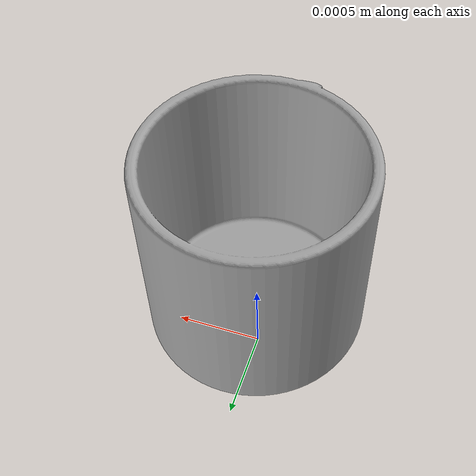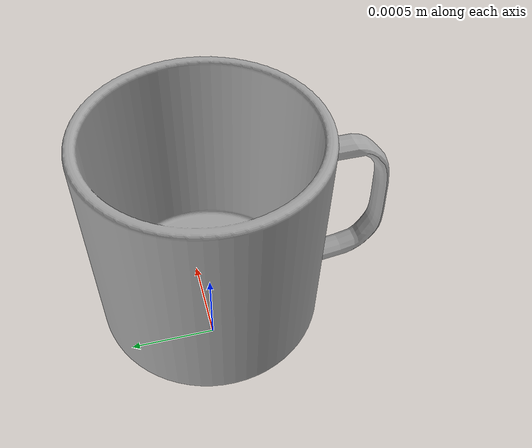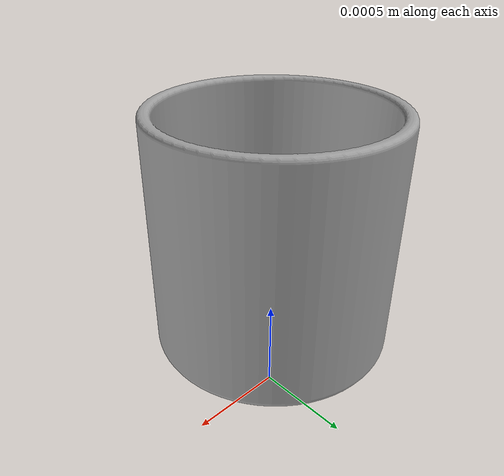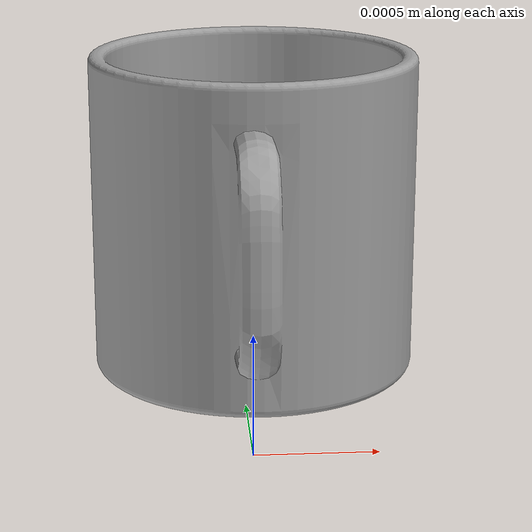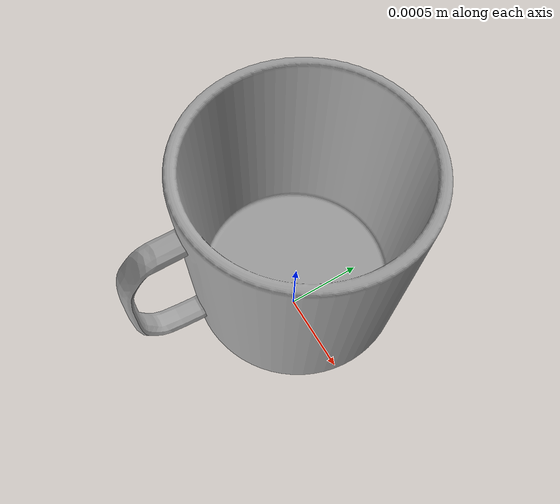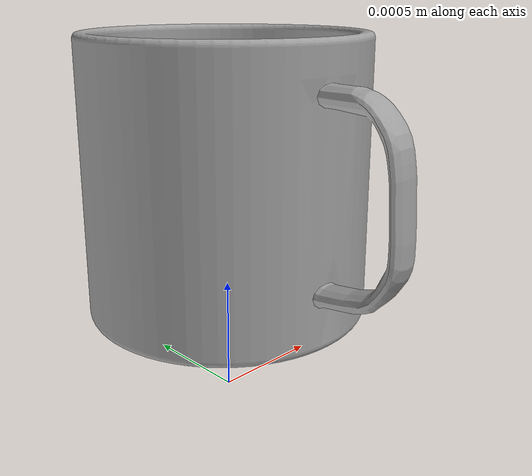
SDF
<?xml version="1.0" ?>
<sdf version="1.5">
  <model name="mug">
    <link name="link">
      <inertial>
        <mass>0.1</mass>
      </inertial>
      <collision name="collision">
        <geometry>
          <mesh>
            <uri>/home/olorin/Desktop/IISc/ROS-ARM-Planning/src/motoman_simulator/motoman_gazebo/sdf/mug/meshes/model.dae</uri>
            <scale>0.02 0.02 0.02</scale>
          </mesh>
        </geometry>
      </collision>
      <visual name="visual">
        <geometry>
          <mesh>
            <uri>/home/olorin/Desktop/IISc/ROS-ARM-Planning/src/motoman_simulator/motoman_gazebo/sdf/mug/meshes/model.dae</uri>
            <scale>0.02 0.02 0.02</scale>
          </mesh>
        </geometry>
      </visual>
    </link>
  </model>
</sdf>
